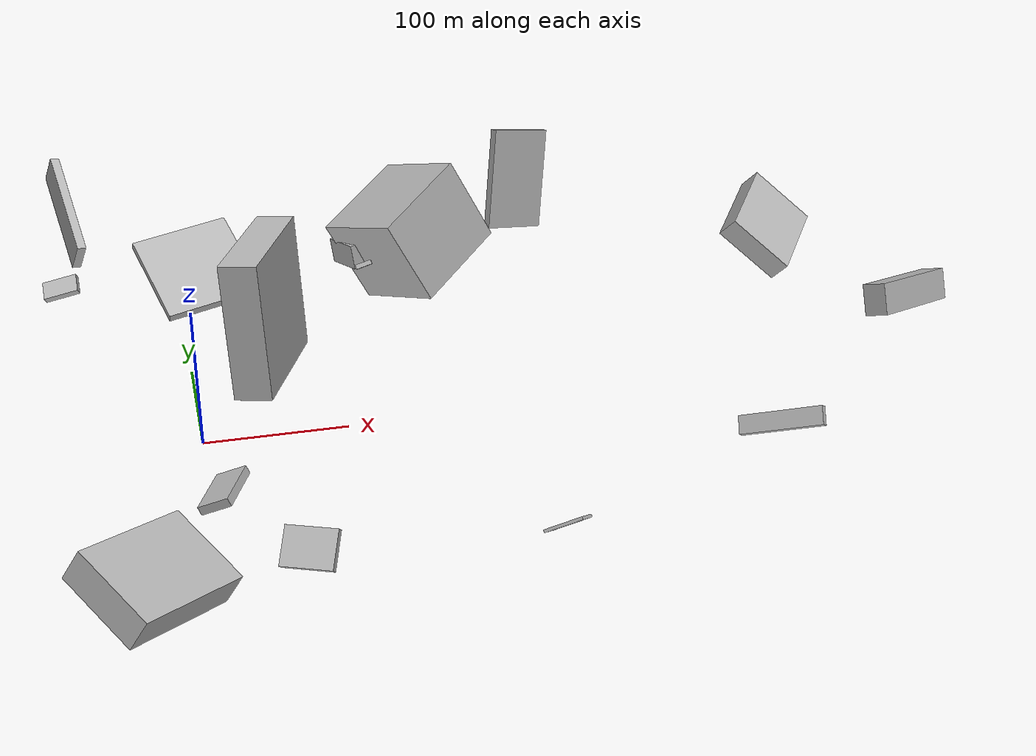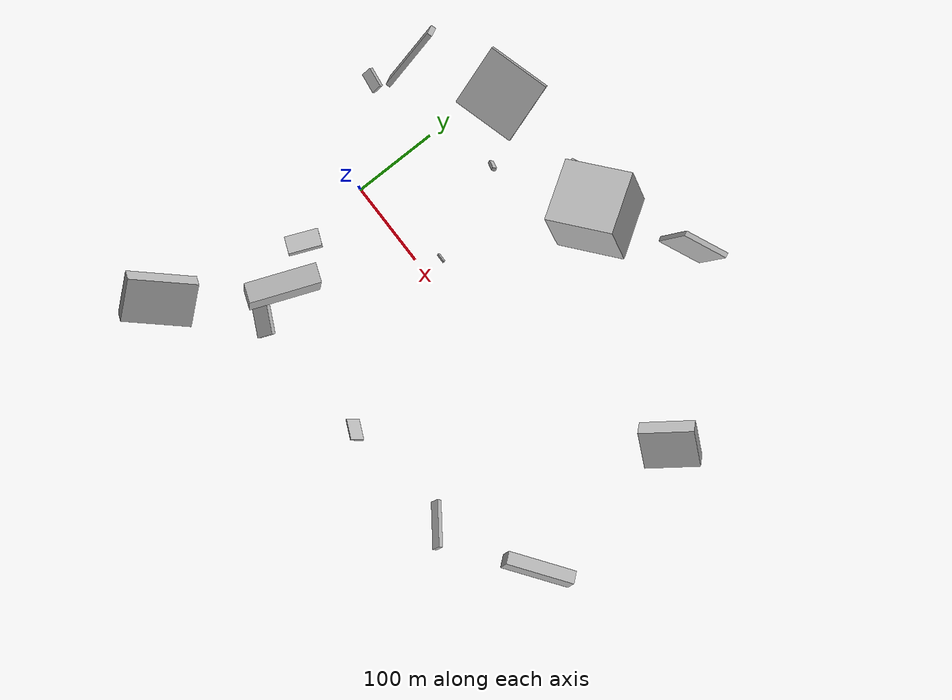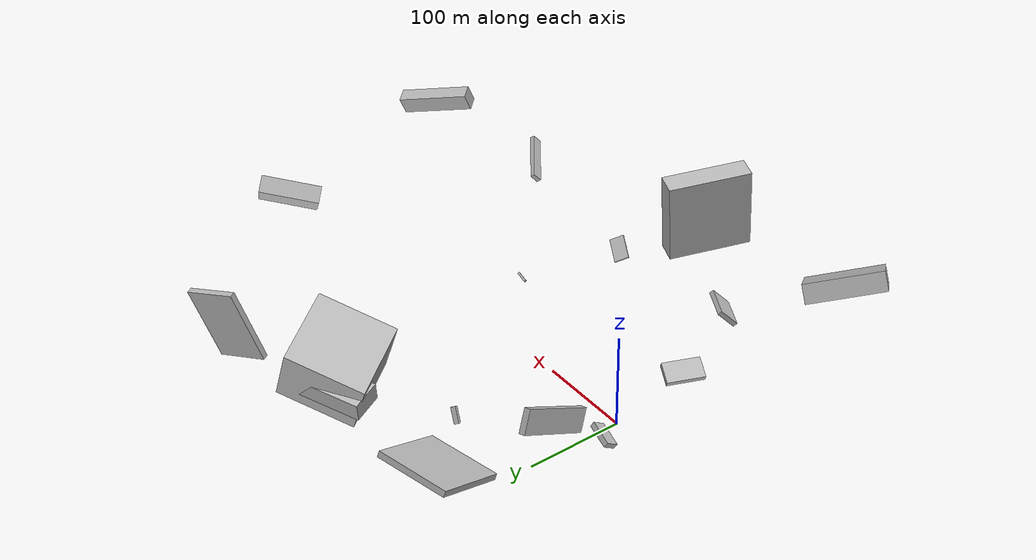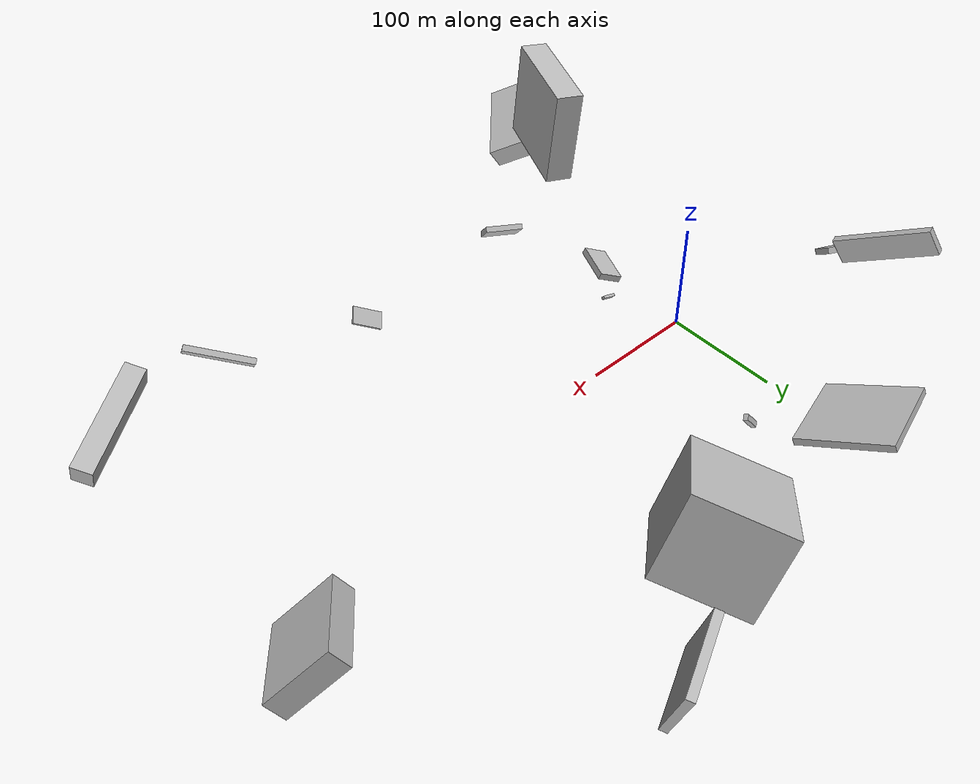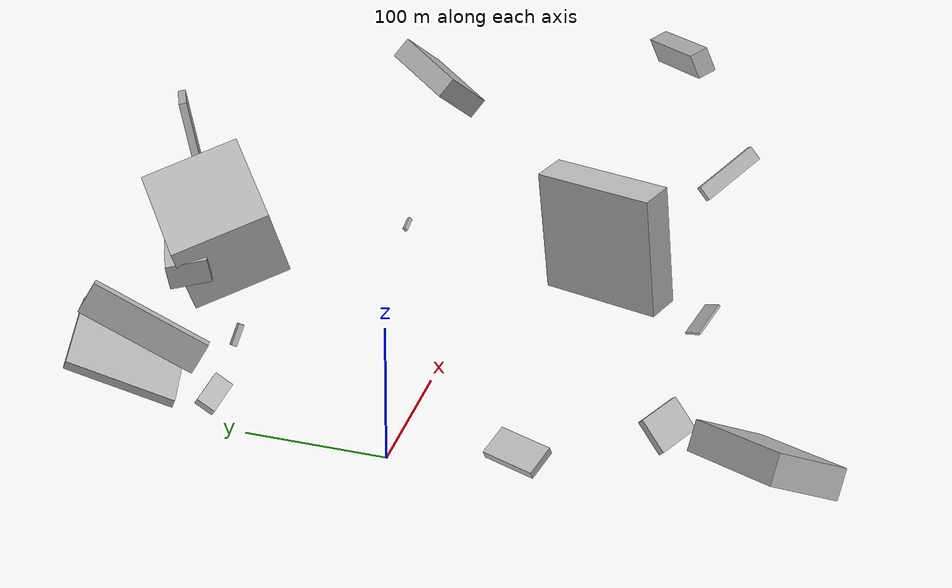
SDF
<sdf version="1.6">
 <world name="default">
  <scene>
   <sky><clouds><speed>12</speed></clouds></sky>
   <ambient>0.4 0.4 0.4 1</ambient>
   <background>0.7 0.7 0.7 1</background>
   <shadows>1</shadows>
  </scene>
  <gravity>0 0 -9.8066</gravity>
  <magnetic_field>6e-06 2.3e-05 -4.2e-05</magnetic_field>
  <physics default="0" name="default_physics" type="ode">
   <ode>
    <solver>
     <type>quick</type>
     <iters>10</iters>
     <sor>1.0</sor>
     <use_dynamic_moi_rescaling>0</use_dynamic_moi_rescaling>
    </solver>
    <constraints>
     <cfm>0</cfm>
     <erp>0.2</erp>
     <contact_max_correcting_vel>100</contact_max_correcting_vel>
     <contact_surface_layer>0.001</contact_surface_layer>
    </constraints>
   </ode>
   <max_step_size>0.004</max_step_size>
   <real_time_factor>1</real_time_factor>
   <real_time_update_rate>250</real_time_update_rate>
  </physics>
  <light name="sun" type="directional">
   <pose>0 0 10 0 0 0</pose>
   <diffuse>0.8 0.8 0.8 1</diffuse>
   <specular>0.2 0.2 0.2 1</specular>
   <attenuation>
    <range>1000</range>
    <constant>0.9</constant>
    <linear>0.01</linear>
    <quadratic>0.001</quadratic>
   </attenuation>
   <direction>-0.5 0.1 -0.9</direction>
  </light>
  <model name="building_1">
   <static>0</static>
   <pose>452.16516859188954 -106.79097476276166 106.35695802411652 0.23335683030283086 0.3425475935191918 2.256893365650699</pose>
   <link name="link">
    <gravity>0</gravity>
    <pose>0 0 10.0 0 0 0</pose>
    <collision name="collision"><geometry><box><size>15 80 20</size></box></geometry></collision>
    <visual name="visual">
     <cast_shadows>0</cast_shadows>
     <geometry><box><size>15 80 20</size></box></geometry>
     <material>
      <script>
       <uri>model://HANNAS_wall/materials/scripts</uri>
       <uri>model://HANNAS_wall/materials/textures</uri>
       <name>vrc/HANNAS_wall</name>
      </script>
     </material>
    </visual>
   </link>
  </model>
  <model name="building_2">
   <static>0</static>
   <pose>303.76336581948806 262.6612548390459 57.05276043570929 1.3341903645101192 -0.17366404475827754 -1.0991175414986243</pose>
   <link name="link">
    <gravity>0</gravity>
    <pose>0 0 27.0 0 0 0</pose>
    <collision name="collision"><geometry><box><size>6 80 54</size></box></geometry></collision>
    <visual name="visual">
     <cast_shadows>0</cast_shadows>
     <geometry><box><size>6 80 54</size></box></geometry>
     <material>
      <script>
       <uri>model://HANNAS_wall/materials/scripts</uri>
       <uri>model://HANNAS_wall/materials/textures</uri>
       <name>vrc/HANNAS_wall</name>
      </script>
     </material>
    </visual>
   </link>
  </model>
  <model name="building_3">
   <static>0</static>
   <pose>8.545651115321926 -87.27532114653738 14.570533334716101 0.4294210354479155 -0.01352820418442654 -1.9689741140968882</pose>
   <link name="link">
    <gravity>0</gravity>
    <pose>0 0 3.0 0 0 0</pose>
    <collision name="collision"><geometry><box><size>39 22 6</size></box></geometry></collision>
    <visual name="visual">
     <cast_shadows>0</cast_shadows>
     <geometry><box><size>39 22 6</size></box></geometry>
     <material>
      <script>
       <uri>model://HANNAS_wall/materials/scripts</uri>
       <uri>model://HANNAS_wall/materials/textures</uri>
       <name>vrc/HANNAS_wall</name>
      </script>
     </material>
    </visual>
   </link>
  </model>
  <model name="building_4">
   <static>0</static>
   <pose>117.5846649989306 21.818809056487304 112.06936557003708 2.147726102188339 0.29730007416103915 3.111732782903046</pose>
   <link name="link">
    <gravity>0</gravity>
    <pose>0 0 1.0 0 0 0</pose>
    <collision name="collision"><geometry><box><size>11 3 2</size></box></geometry></collision>
    <visual name="visual">
     <cast_shadows>0</cast_shadows>
     <geometry><box><size>11 3 2</size></box></geometry>
     <material>
      <script>
       <uri>model://HANNAS_wall/materials/scripts</uri>
       <uri>model://HANNAS_wall/materials/textures</uri>
       <name>vrc/HANNAS_wall</name>
      </script>
     </material>
    </visual>
   </link>
  </model>
  <model name="building_5">
   <static>0</static>
   <pose>38.817885374449745 -136.12271120748056 128.0428699280353 -0.07190396802756732 0.07398095139105562 1.1950950916450436</pose>
   <link name="link">
    <gravity>0</gravity>
    <pose>0 0 40.0 0 0 0</pose>
    <collision name="collision"><geometry><box><size>80 22 80</size></box></geometry></collision>
    <visual name="visual">
     <cast_shadows>0</cast_shadows>
     <geometry><box><size>80 22 80</size></box></geometry>
     <material>
      <script>
       <uri>model://HANNAS_wall/materials/scripts</uri>
       <uri>model://HANNAS_wall/materials/textures</uri>
       <name>vrc/HANNAS_wall</name>
      </script>
     </material>
    </visual>
   </link>
  </model>
  <model name="building_6">
   <static>0</static>
   <pose>24.483425374820964 156.40420990823094 24.212685196000468 0.17927806231416984 -1.1431917642491267 -1.4595450113265402</pose>
   <link name="link">
    <gravity>0</gravity>
    <pose>0 0 38.5 0 0 0</pose>
    <collision name="collision"><geometry><box><size>6 75 77</size></box></geometry></collision>
    <visual name="visual">
     <cast_shadows>0</cast_shadows>
     <geometry><box><size>6 75 77</size></box></geometry>
     <material>
      <script>
       <uri>model://HANNAS_wall/materials/scripts</uri>
       <uri>model://HANNAS_wall/materials/textures</uri>
       <name>vrc/HANNAS_wall</name>
      </script>
     </material>
    </visual>
   </link>
  </model>
  <model name="building_7">
   <static>0</static>
   <pose>-83.40809600053748 78.51756185913064 82.60078205465183 0.4436520032345392 -0.9289599001685872 -2.076278294346597</pose>
   <link name="link">
    <gravity>0</gravity>
    <pose>0 0 6.5 0 0 0</pose>
    <collision name="collision"><geometry><box><size>5 24 13</size></box></geometry></collision>
    <visual name="visual">
     <cast_shadows>0</cast_shadows>
     <geometry><box><size>5 24 13</size></box></geometry>
     <material>
      <script>
       <uri>model://HANNAS_wall/materials/scripts</uri>
       <uri>model://HANNAS_wall/materials/textures</uri>
       <name>vrc/HANNAS_wall</name>
      </script>
     </material>
    </visual>
   </link>
  </model>
  <model name="building_8">
   <static>0</static>
   <pose>-44.350299136967564 -249.60240688248223 67.7618254852716 0.2956367069070088 -0.45880443951651845 2.265643926667548</pose>
   <link name="link">
    <gravity>0</gravity>
    <pose>0 0 10.0 0 0 0</pose>
    <collision name="collision"><geometry><box><size>53 80 20</size></box></geometry></collision>
    <visual name="visual">
     <cast_shadows>0</cast_shadows>
     <geometry><box><size>53 80 20</size></box></geometry>
     <material>
      <script>
       <uri>model://HANNAS_wall/materials/scripts</uri>
       <uri>model://HANNAS_wall/materials/textures</uri>
       <name>vrc/HANNAS_wall</name>
      </script>
     </material>
    </visual>
   </link>
  </model>
  <model name="building_9">
   <static>0</static>
   <pose>-69.50857691200879 97.76255087546437 101.32366090379637 -1.0383718205800545 0.1353685606158269 0.2725129858974719</pose>
   <link name="link">
    <gravity>0</gravity>
    <pose>0 0 40.0 0 0 0</pose>
    <collision name="collision"><geometry><box><size>6 22 80</size></box></geometry></collision>
    <visual name="visual">
     <cast_shadows>0</cast_shadows>
     <geometry><box><size>6 22 80</size></box></geometry>
     <material>
      <script>
       <uri>model://HANNAS_wall/materials/scripts</uri>
       <uri>model://HANNAS_wall/materials/textures</uri>
       <name>vrc/HANNAS_wall</name>
      </script>
     </material>
    </visual>
   </link>
  </model>
  <model name="building_10">
   <static>0</static>
   <pose>209.1003000059943 -170.21311278821744 18.199056583586035 -2.622375056037722 0.508766682573873 2.7129624013600924</pose>
   <link name="link">
    <gravity>0</gravity>
    <pose>0 0 1.0 0 0 0</pose>
    <collision name="collision"><geometry><box><size>27 16 2</size></box></geometry></collision>
    <visual name="visual">
     <cast_shadows>0</cast_shadows>
     <geometry><box><size>27 16 2</size></box></geometry>
     <material>
      <script>
       <uri>model://HANNAS_wall/materials/scripts</uri>
       <uri>model://HANNAS_wall/materials/textures</uri>
       <name>vrc/HANNAS_wall</name>
      </script>
     </material>
    </visual>
   </link>
  </model>
  <model name="building_11">
   <static>0</static>
   <pose>198.9087139727544 161.6697446624422 65.13647180604434 2.2827643126691397 -1.09218141689214 3.052043817602031</pose>
   <link name="link">
    <gravity>0</gravity>
    <pose>0 0 38.0 0 0 0</pose>
    <collision name="collision"><geometry><box><size>69 80 76</size></box></geometry></collision>
    <visual name="visual">
     <cast_shadows>0</cast_shadows>
     <geometry><box><size>69 80 76</size></box></geometry>
     <material>
      <script>
       <uri>model://HANNAS_wall/materials/scripts</uri>
       <uri>model://HANNAS_wall/materials/textures</uri>
       <name>vrc/HANNAS_wall</name>
      </script>
     </material>
    </visual>
   </link>
  </model>
  <model name="building_12">
   <static>0</static>
   <pose>156.73642925803205 223.11996590409092 38.95396093310614 0.42068579492141905 1.3957536998738012 -0.7357088614445682</pose>
   <link name="link">
    <gravity>0</gravity>
    <pose>0 0 15.5 0 0 0</pose>
    <collision name="collision"><geometry><box><size>19 80 31</size></box></geometry></collision>
    <visual name="visual">
     <cast_shadows>0</cast_shadows>
     <geometry><box><size>19 80 31</size></box></geometry>
     <material>
      <script>
       <uri>model://HANNAS_wall/materials/scripts</uri>
       <uri>model://HANNAS_wall/materials/textures</uri>
       <name>vrc/HANNAS_wall</name>
      </script>
     </material>
    </visual>
   </link>
  </model>
  <model name="building_13">
   <static>0</static>
   <pose>72.58855673574973 134.58422125520354 29.47094727465068 1.1220004595150153 0.47298793157228747 -1.1042179157684868</pose>
   <link name="link">
    <gravity>0</gravity>
    <pose>0 0 2.5 0 0 0</pose>
    <collision name="collision"><geometry><box><size>4 16 5</size></box></geometry></collision>
    <visual name="visual">
     <cast_shadows>0</cast_shadows>
     <geometry><box><size>4 16 5</size></box></geometry>
     <material>
      <script>
       <uri>model://HANNAS_wall/materials/scripts</uri>
       <uri>model://HANNAS_wall/materials/textures</uri>
       <name>vrc/HANNAS_wall</name>
      </script>
     </material>
    </visual>
   </link>
  </model>
  <model name="building_14">
   <static>0</static>
   <pose>368.3611007666815 -177.26337395586455 77.04144767108195 2.0172792529232044 -0.5936177010523742 -2.46210640640984</pose>
   <link name="link">
    <gravity>0</gravity>
    <pose>0 0 27.5 0 0 0</pose>
    <collision name="collision"><geometry><box><size>5 12 55</size></box></geometry></collision>
    <visual name="visual">
     <cast_shadows>0</cast_shadows>
     <geometry><box><size>5 12 55</size></box></geometry>
     <material>
      <script>
       <uri>model://HANNAS_wall/materials/scripts</uri>
       <uri>model://HANNAS_wall/materials/textures</uri>
       <name>vrc/HANNAS_wall</name>
      </script>
     </material>
    </visual>
   </link>
  </model>
  <model name="building_15">
   <static>0</static>
   <pose>49.470314817643214 -177.81673405710464 30.049685396783694 -3.0349426527655834 0.798354194357028 -1.9654209051790619</pose>
   <link name="link">
    <gravity>0</gravity>
    <pose>0 0 2.5 0 0 0</pose>
    <collision name="collision"><geometry><box><size>25 34 5</size></box></geometry></collision>
    <visual name="visual">
     <cast_shadows>0</cast_shadows>
     <geometry><box><size>25 34 5</size></box></geometry>
     <material>
      <script>
       <uri>model://HANNAS_wall/materials/scripts</uri>
       <uri>model://HANNAS_wall/materials/textures</uri>
       <name>vrc/HANNAS_wall</name>
      </script>
     </material>
    </visual>
   </link>
  </model>
  <model name="building_16">
   <static>0</static>
   <pose>454.7000206813328 87.94763514595718 58.48035649454383 -0.36467132811359054 0.8302934906709426 2.252981989031068</pose>
   <link name="link">
    <gravity>0</gravity>
    <pose>0 0 26.5 0 0 0</pose>
    <collision name="collision"><geometry><box><size>18 63 53</size></box></geometry></collision>
    <visual name="visual">
     <cast_shadows>0</cast_shadows>
     <geometry><box><size>18 63 53</size></box></geometry>
     <material>
      <script>
       <uri>model://HANNAS_wall/materials/scripts</uri>
       <uri>model://HANNAS_wall/materials/textures</uri>
       <name>vrc/HANNAS_wall</name>
      </script>
     </material>
    </visual>
   </link>
  </model>
 </world>
</sdf>
